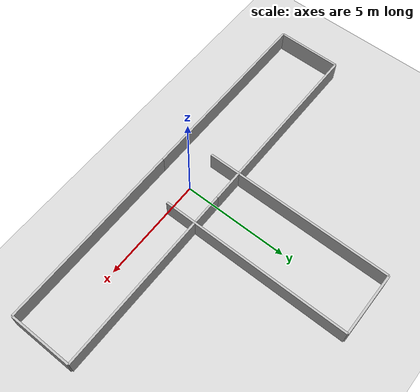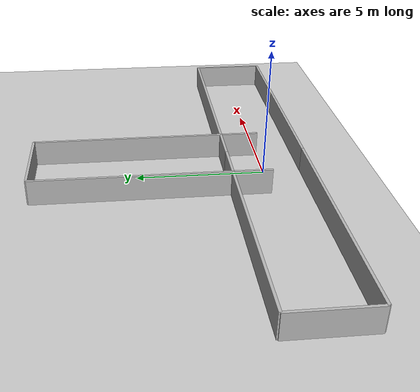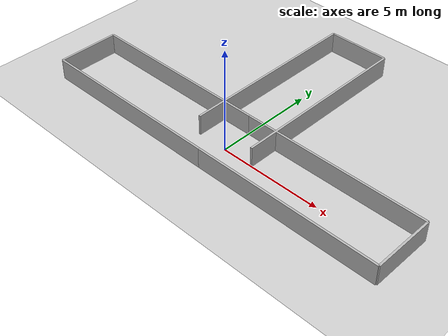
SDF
<?xml version="1.0" ?>
<sdf version="1.6">
  <world name="junction">
    <physics type="ode">
      <max_step_size>0.01</max_step_size>
      <real_time_factor>1</real_time_factor>
      <real_time_update_rate>100</real_time_update_rate>
    </physics>
    <gui><camera name="user_camera"><pose>-10 -10 12 0 0.9 0.78</pose></camera></gui>

    <include><uri>model://sun</uri></include>
    <include><uri>model://ground_plane</uri></include>

    <!-- T-junction: 14 m N-S corridor meets 14 m E-W corridor, 3 m wide -->
    <!-- N corridor walls -->
    <model name="ns_left">
      <static>true</static><pose>-1.5 4.5 0.5 0 0 0</pose>
      <link name="link">
        <collision name="c"><geometry><box><size>0.1 9 1.0</size></box></geometry></collision>
        <visual name="v"><geometry><box><size>0.1 9 1.0</size></box></geometry></visual>
      </link>
    </model>
    <model name="ns_right">
      <static>true</static><pose>1.5 4.5 0.5 0 0 0</pose>
      <link name="link">
        <collision name="c"><geometry><box><size>0.1 9 1.0</size></box></geometry></collision>
        <visual name="v"><geometry><box><size>0.1 9 1.0</size></box></geometry></visual>
      </link>
    </model>
    <!-- E corridor walls -->
    <model name="ew_top">
      <static>true</static><pose>4.5 -1.5 0.5 0 0 0</pose>
      <link name="link">
        <collision name="c"><geometry><box><size>9 0.1 1.0</size></box></geometry></collision>
        <visual name="v"><geometry><box><size>9 0.1 1.0</size></box></geometry></visual>
      </link>
    </model>
    <model name="ew_bot">
      <static>true</static><pose>4.5 1.5 0.5 0 0 0</pose>
      <link name="link">
        <collision name="c"><geometry><box><size>9 0.1 1.0</size></box></geometry></collision>
        <visual name="v"><geometry><box><size>9 0.1 1.0</size></box></geometry></visual>
      </link>
    </model>
    <!-- W corridor walls -->
    <model name="wc_top">
      <static>true</static><pose>-4.5 -1.5 0.5 0 0 0</pose>
      <link name="link">
        <collision name="c"><geometry><box><size>9 0.1 1.0</size></box></geometry></collision>
        <visual name="v"><geometry><box><size>9 0.1 1.0</size></box></geometry></visual>
      </link>
    </model>
    <model name="wc_bot">
      <static>true</static><pose>-4.5 1.5 0.5 0 0 0</pose>
      <link name="link">
        <collision name="c"><geometry><box><size>9 0.1 1.0</size></box></geometry></collision>
        <visual name="v"><geometry><box><size>9 0.1 1.0</size></box></geometry></visual>
      </link>
    </model>
    <!-- End caps -->
    <model name="cap_north">
      <static>true</static><pose>0 9 0.5 0 0 0</pose>
      <link name="link">
        <collision name="c"><geometry><box><size>3 0.1 1.0</size></box></geometry></collision>
        <visual name="v"><geometry><box><size>3 0.1 1.0</size></box></geometry></visual>
      </link>
    </model>
    <model name="cap_east">
      <static>true</static><pose>9 0 0.5 0 0 0</pose>
      <link name="link">
        <collision name="c"><geometry><box><size>0.1 3 1.0</size></box></geometry></collision>
        <visual name="v"><geometry><box><size>0.1 3 1.0</size></box></geometry></visual>
      </link>
    </model>
    <model name="cap_west">
      <static>true</static><pose>-9 0 0.5 0 0 0</pose>
      <link name="link">
        <collision name="c"><geometry><box><size>0.1 3 1.0</size></box></geometry></collision>
        <visual name="v"><geometry><box><size>0.1 3 1.0</size></box></geometry></visual>
      </link>
    </model>

  </world>
</sdf>
